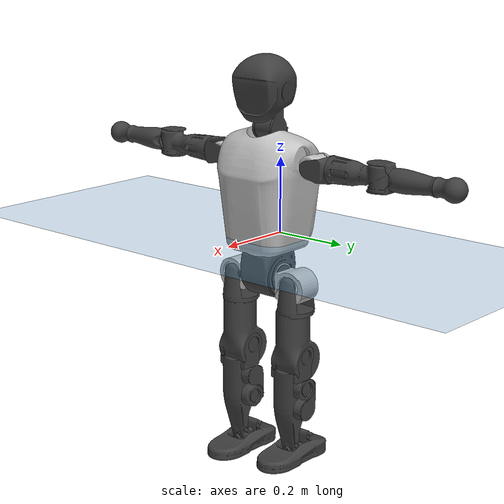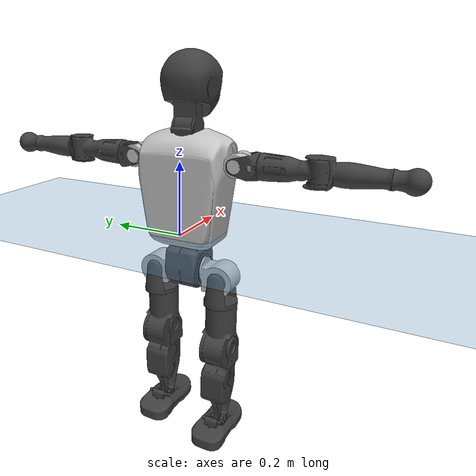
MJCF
<mujoco model="T1">
  <compiler angle="radian" assetdir="assets" balanceinertia="true" inertiafromgeom="false"/>

  <option timestep="0.005" density="1.2" viscosity="2e-05"/>

  <size nkey="1"/>

  <visual>
    <quality shadowsize="8192"/>
    <map shadowclip="0.5"/>
  </visual>

  <default>
    <default class="/">
      <joint armature="0.01" damping="0.01" frictionloss="0.1"/>
      <geom contype="0" conaffinity="0" group="1" solref="-1000 -80"/>
      <site size="0.01 0.005 0.005" group="5"/>
      <general forcelimited="true" biastype="affine" gainprm="25" biasprm="0 -25 -0.6"/>
      <default class="t1">
        <geom rgba="0.25 0.25 0.25 1"/>
        <default class="visual">
          <geom type="mesh" group="2"/>
        </default>
        <default class="collision">
          <geom group="3"/>
        </default>
        <default class="foot">
          <geom size="0.1115 0.05 0.015" type="box" condim="6" group="4" priority="1" solimp="0.015 1 0.015"/>
        </default>
        <default class="reward_collision_sphere">
          <geom group="5" rgba="1 0 0 1"/>
        </default>
      </default>
    </default>
  </default>

  <asset>
    <texture type="skybox" colorspace="auto" name="//unnamed_texture_0" builtin="gradient" rgb1="0.95 0.95 0.95" rgb2="0.95 0.95 0.95" width="100" height="600"/>
    <texture type="2d" colorspace="auto" name="texplane" builtin="checker" rgb1="0.345 0.575 0.748" rgb2="0.345 0.575 0.748" markrgb="1 1 1" width="512" height="512"/>
    <material name="MatPlane" class="/" texture="texplane" texuniform="true" texrepeat="2 2" specular="0.9"/>
    <mesh name="Trunk" class="/" file="Trunk.stl"/>
    <mesh name="H1" class="/" file="H1.stl"/>
    <mesh name="H2" class="/" file="H2.stl"/>
    <mesh name="AL1" class="/" file="AL1.stl"/>
    <mesh name="AL2" class="/" file="AL2.stl"/>
    <mesh name="AL3" class="/" file="AL3.stl"/>
    <mesh name="left_hand_link" class="/" file="left_hand_link.stl"/>
    <mesh name="AR1" class="/" file="AR1.stl"/>
    <mesh name="AR2" class="/" file="AR2.stl"/>
    <mesh name="AR3" class="/" file="AR3.stl"/>
    <mesh name="right_hand_link" class="/" file="right_hand_link.stl"/>
    <mesh name="Waist" class="/" file="Waist.stl"/>
    <mesh name="Hip_Pitch_Left" class="/" file="Hip_Pitch_Left.stl"/>
    <mesh name="Hip_Roll_Left" class="/" file="Hip_Roll_Left.stl"/>
    <mesh name="Hip_Yaw_Left" class="/" file="Hip_Yaw_Left.stl"/>
    <mesh name="Shank_Left" class="/" file="Shank_Left.stl"/>
    <mesh name="Ankle_Cross_Left" class="/" file="Ankle_Cross_Left.stl"/>
    <mesh name="left_foot_link" class="/" file="left_foot_link.stl"/>
    <mesh name="Hip_Pitch_Right" class="/" file="Hip_Pitch_Right.stl"/>
    <mesh name="Hip_Roll_Right" class="/" file="Hip_Roll_Right.stl"/>
    <mesh name="Hip_Yaw_Right" class="/" file="Hip_Yaw_Right.stl"/>
    <mesh name="Shank_Right" class="/" file="Shank_Right.stl"/>
    <mesh name="Ankle_Cross_Right" class="/" file="Ankle_Cross_Right.stl"/>
    <mesh name="right_foot_link" class="/" file="right_foot_link.stl"/>
  </asset>

  <worldbody>
    <geom name="floor" class="/" size="100 100 0.125" type="plane" group="0" material="MatPlane"/>
    <light name="toplight_shadow" class="/" pos="0 0 5" dir="0.0990148 0.0990148 -0.990148" type="directional" ambient="0.04 0.04 0.04" diffuse="0.55 0.55 0.55" specular="0.12 0.12 0.12"/>
    <light name="toplight_fill" class="/" pos="0 0 5" dir="0.0990148 0.0990148 -0.990148" type="directional" castshadow="false" ambient="0.04 0.04 0.04" diffuse="0.3 0.3 0.3" specular="0.08 0.08 0.08"/>
    <body name="trunk" childclass="t1" pos="-0.0025442 -0.00162683 0.00236833" quat="1 -0.000616794 1.80303e-05 0.000325928">
      <inertial pos="0.0394618 0.0010133 0.0990538" quat="0.999967 0.000872071 -0.00807651 -0.000976963" mass="7.36431" diaginertia="0.0173785 0.0549588 0.0367049"/>
      <joint name="//unnamed_joint_0" type="free" armature="0" damping="0" frictionloss="0"/>
      <geom name="//unnamed_geom_1" class="visual" rgba="0.76 0.76 0.76 1" mesh="Trunk"/>
      <geom name="//unnamed_geom_2" class="collision" size="0.0642933 0.0857244 0.128587" pos="0.0427773 0 0.11015" type="box"/>
      <geom name="//unnamed_geom_3" class="reward_collision_sphere" size="0.0985831" pos="0.0427773 0 0.0917921"/>
      <geom name="//unnamed_geom_4" class="reward_collision_sphere" size="0.0128587" pos="0.0427773 0.0799729 0"/>
      <geom name="//unnamed_geom_5" class="reward_collision_sphere" size="0.0128587" pos="0.0427773 -0.0799729 0"/>
      <geom name="//unnamed_geom_6" class="reward_collision_sphere" size="0.0128587" pos="0.0427773 0.100672 0.165226"/>
      <geom name="//unnamed_geom_7" class="reward_collision_sphere" size="0.0128587" pos="0.0427773 -0.100672 0.165226"/>
      <site name="imu" pos="0.01184 -0.00888468 0.00806007" size="0.00857244"/>
      <camera name="track" pos="0 -1.88171 0" quat="0.707107 0.707107 0 0" mode="trackcom"/>
      <camera name="ego_camera" pos="0.0869805 0 0.385527" quat="-0.5 -0.5 0.5 0.5"/>
      <body name="H1" pos="0.0455485 0.00127369 0.22032" quat="1 -0.000133356 -5.9241e-05 4.57696e-05">
        <inertial pos="-0.00300119 0.00089624 0.0550324" quat="0.7639 -0.0135836 0.00318624 0.645184" mass="0.26788" diaginertia="4.2838e-05 0.000164198 9.45933e-05"/>
        <joint name="AAHead_yaw" pos="0 0 0" axis="0.00439392 -0.000507889 0.99999" range="-1.62286 1.52826" armature="0.00759234" damping="0.00282469" frictionloss="0.0844027"/>
        <geom name="//unnamed_geom_8" class="visual" mesh="H1"/>
        <body name="H2" pos="0.000149799 -0.000129153 0.0592489" quat="1 -0.000128789 -6.91044e-05 -1.28674e-05">
          <inertial pos="0.00566118 0.00216046 0.0901614" quat="0.987838 0.108794 -0.0669662 -0.0886327" mass="0.391896" diaginertia="0.000354245 0.00143415 0.00111211"/>
          <joint name="Head_pitch" pos="0 0 0" axis="0.000172741 -1 -0.000784301" stiffness="6.9495e-05" range="-1.20234 0.336259" armature="0.00818404" damping="0.0138732" frictionloss="0.0786545"/>
          <geom name="//unnamed_geom_9" class="visual" mesh="H2"/>
          <geom name="//unnamed_geom_10" class="collision" size="0.0685796" pos="0.00712955 0 0.100971"/>
          <geom name="//unnamed_geom_11" class="reward_collision_sphere" size="0.077152" pos="0.0142591 0 0.0917921"/>
        </body>
      </body>
      <body name="AL1" pos="0.0421745 0.10252 0.199324" quat="1 1.41697e-05 0.000383571 5.76839e-05">
        <inertial pos="-0.00368091 0.0416433 0.000690418" quat="0.504534 0.496022 -0.504019 0.495351" mass="0.334931" diaginertia="0.000252696 0.000998307 0.000197138"/>
        <joint name="Left_Shoulder_Pitch" pos="0 0 0" axis="0.00258259 0.999875 -0.0156236" stiffness="0.00639723" range="-3.30728 1.27376" armature="0.00905282" damping="0.00914673" frictionloss="0.084525"/>
        <geom name="//unnamed_geom_12" class="visual" rgba="0.76 0.76 0.76 1" mesh="AL1"/>
        <body name="AL2" pos="-4.55145e-05 0.0445243 -0.00274899" quat="1 4.2566e-05 -0.000340359 1.74126e-05">
          <inertial pos="0.00112691 0.0327412 0.000379192" quat="0.48817 0.510874 -0.489688 0.510786" mass="0.0972542" diaginertia="7.21865e-05 0.000252044 0.000112277"/>
          <joint name="Left_Shoulder_Roll" pos="0 0 0" axis="-1 0.000137011 -0.000409683" range="-1.62895 1.79562" armature="0.00873273" damping="0.0120296" frictionloss="0.08736"/>
          <geom name="//unnamed_geom_13" class="visual" mesh="AL2"/>
          <body name="AL3" pos="0.00234726 0.0562956 0.00319073" quat="0.999999 0.000791506 0.000280268 -0.000849213">
            <inertial pos="-0.00076799 0.0792681 -0.000666207" quat="0.707041 0.707171 -2.36791e-05 -0.00169477" mass="0.662449" diaginertia="0.00245417 0.00931392 0.000400138"/>
            <joint name="Left_Elbow_Pitch" pos="0 0 0" axis="0.00256586 -0.999992 0.00301244" range="-2.26804 2.26988" armature="0.00752491" damping="0.0176822" frictionloss="0.0830592"/>
            <geom name="//unnamed_geom_14" class="visual" mesh="AL3"/>
            <geom name="//unnamed_geom_15" class="collision" size="0.0257173 0.0642933" pos="0 0.0470429 0" quat="0.707105 0.707108 0 0" type="cylinder"/>
            <geom name="//unnamed_geom_16" class="reward_collision_sphere" size="0.0308608"/>
            <body name="left_hand_link" pos="-0.00224484 0.139271 0.000508413" quat="1 -0.000162806 -0.000563664 9.29863e-05">
              <inertial pos="0.000718219 0.100664 0.00313639" quat="0.708282 0.705787 -0.0141459 -0.00116691" mass="0.198843" diaginertia="0.00151786 0.00597683 0.00013561"/>
              <joint name="Left_Elbow_Yaw" pos="0 0 0" axis="-0.00318299 0.00199186 0.999993" stiffness="0.00774333" range="-2.44813 -0.0480082" armature="0.0088059" damping="0.0119268" frictionloss="0.0869144"/>
              <geom name="//unnamed_geom_17" class="visual" mesh="left_hand_link"/>
              <geom name="//unnamed_geom_18" class="collision" size="0.0257173 0.0750089" pos="0 0.122311 0" quat="0.707105 0.707108 0 0" type="cylinder"/>
              <geom name="//unnamed_geom_19" class="reward_collision_sphere" size="0.0428622"/>
              <geom name="//unnamed_geom_20" class="reward_collision_sphere" size="0.0300036" pos="0 0.103494 0"/>
              <geom name="//unnamed_geom_21" class="reward_collision_sphere" size="0.0300036" pos="0 0.202284 0"/>
            </body>
          </body>
        </body>
      </body>
      <body name="AR1" pos="0.0434079 -0.0998851 0.198479" quat="1 -0.000361202 1.06681e-05 0.000164921">
        <inertial pos="-0.00217826 -0.044087 0.000514356" quat="0.503905 0.495677 -0.504737 0.495605" mass="0.321882" diaginertia="0.000244479 0.000911361 0.000184413"/>
        <joint name="Right_Shoulder_Pitch" pos="0 0 0" axis="-0.000610027 -0.999994 0.00333625" stiffness="0.00665362" range="-1.1822 3.33056" armature="0.00956956" damping="0.00774949" frictionloss="0.0950649"/>
        <geom name="//unnamed_geom_22" class="visual" rgba="0.76 0.76 0.76 1" mesh="AR1"/>
        <body name="AR2" pos="-0.000919204 -0.0462551 -0.00103275" quat="0.999999 -0.000765599 -0.000330076 0.000995976">
          <inertial pos="-0.000130861 -0.0362479 -0.00238906" quat="0.510055 0.479718 -0.522893 0.486105" mass="0.101161" diaginertia="7.36675e-05 0.0002566 0.000115008"/>
          <joint name="Right_Shoulder_Roll" pos="0 0 0" axis="-0.999788 -0.0176339 0.0106357" range="-1.74857 1.59239" armature="0.00819192" damping="0.00742361" frictionloss="0.085667"/>
          <geom name="//unnamed_geom_23" class="visual" mesh="AR2"/>
          <body name="AR3" pos="-2.43759e-05 -0.0586667 0.000951792" quat="1 -0.000254167 0.000765304 -0.000542017">
            <inertial pos="-0.000322507 -0.0813705 0.00151899" quat="0.708044 0.706169 5.71955e-07 -0.000112259" mass="0.620997" diaginertia="0.00226977 0.0091132 0.000379837"/>
            <joint name="Right_Elbow_Pitch" pos="0 0 0" axis="0.000271372 1 -0.000193074" range="-2.28915 2.27785" armature="0.00864588" damping="0.0142448" frictionloss="0.0844614"/>
            <geom name="//unnamed_geom_24" class="visual" mesh="AR3"/>
            <geom name="//unnamed_geom_25" class="collision" size="0.0257173 0.0642933" pos="0 -0.0470429 0" quat="0.707105 0.707108 0 0" type="cylinder"/>
            <geom name="//unnamed_geom_26" class="reward_collision_sphere" size="0.0308608"/>
            <body name="right_hand_link" pos="-0.00317963 -0.138118 0.000385082" quat="1 6.53077e-06 9.23511e-05 -0.000104091">
              <inertial pos="-0.000275888 -0.100994 0.000186157" quat="0.704064 0.710131 0.00278638 -0.000119316" mass="0.201792" diaginertia="0.00151097 0.00604063 0.000136013"/>
              <joint name="Right_Elbow_Yaw" pos="0 0 0" axis="2.48926e-05 0.000150973 1" stiffness="0.00314402" range="-0.0390621 2.43822" armature="0.00732354" damping="0.0108464" frictionloss="0.0978434"/>
              <geom name="//unnamed_geom_27" class="visual" mesh="right_hand_link"/>
              <geom name="//unnamed_geom_28" class="collision" size="0.0257173 0.0750089" pos="0 -0.122311 0" quat="0.707105 0.707108 0 0" type="cylinder"/>
              <geom name="//unnamed_geom_29" class="reward_collision_sphere" size="0.0428622"/>
              <geom name="//unnamed_geom_30" class="reward_collision_sphere" size="0.0300036" pos="0 -0.103494 0"/>
              <geom name="//unnamed_geom_31" class="reward_collision_sphere" size="0.0300036" pos="0 -0.202284 0"/>
            </body>
          </body>
        </body>
      </body>
      <body name="Waist" pos="0.0451516 -0.0040264 -0.103423" quat="1 0.000341121 9.85802e-05 -0.000292644">
        <inertial pos="0.000600884 0.00195341 0.00420189" quat="0.983185 0.00110053 -0.182595 0.00241751" mass="1.56391" diaginertia="0.000962843 0.00372158 0.00296717"/>
        <joint name="Waist" pos="0 0 0" axis="-0.0132716 0.0014051 0.999911" stiffness="0.00926151" range="-1.57462 1.59729" armature="0.00853331" damping="0.0111174" frictionloss="0.0858319"/>
        <geom name="//unnamed_geom_32" class="visual" mesh="Waist"/>
        <body name="Hip_Pitch_Left" pos="-0.000565131 0.0970709 0.000609655" quat="1 -0.000159014 0.000923322 3.10733e-05">
          <inertial pos="0.00159111 -0.00837594 -0.0162499" quat="0.97651 0.214968 0.014699 -0.000901459" mass="0.659417" diaginertia="0.000338789 0.00114392 0.00082582"/>
          <joint name="Left_Hip_Pitch" pos="0 0 0" axis="-0.00862588 0.99996 -0.00216772" stiffness="0.00818355" range="-1.75102 1.55355" armature="0.00979265" damping="0.0125315" frictionloss="0.0813628"/>
          <geom name="//unnamed_geom_33" class="visual" rgba="0.76 0.76 0.76 1" mesh="Hip_Pitch_Left"/>
          <body name="Hip_Roll_Left" pos="0.00126198 -0.0033094 -0.0154196" quat="1 0.000233485 0.000159631 -3.3668e-05">
            <inertial pos="0.00170831 -0.000153013 -0.0521142" quat="0.706528 -0.00590502 -0.00642456 0.707631" mass="0.234096" diaginertia="0.000305749 0.00107845 0.000324692"/>
            <joint name="Left_Hip_Roll" pos="0 0 0" axis="-0.999917 -0.0069119 0.0108468" range="-1.58402 0.257427" armature="0.00909443" damping="0.0124049" frictionloss="0.0953449"/>
            <geom name="//unnamed_geom_34" class="visual" mesh="Hip_Roll_Left"/>
            <geom name="//unnamed_geom_35" class="reward_collision_sphere" size="0.0471484"/>
            <body name="Hip_Yaw_Left" pos="0.00513028 -0.00349766 -0.0719963" quat="0.999999 0.00132698 0.000314122 0.000253942">
              <inertial pos="-0.00422977 0.000928256 -0.0844839" quat="0.691975 -0.0340245 -0.0231319 0.720748" mass="1.37183" diaginertia="0.00459952 0.0186708 0.00167747"/>
              <joint name="Left_Hip_Yaw" pos="0 0 0" axis="-0.000339117 0.000807608 -1" range="-1.00727 1.00771" armature="0.00838629" damping="0.0142658" frictionloss="0.0867885"/>
              <geom name="//unnamed_geom_36" class="visual" mesh="Hip_Yaw_Left"/>
              <geom name="//unnamed_geom_37" class="collision" size="0.0428622 0.0685796" type="cylinder"/>
              <body name="Shank_Left" pos="-0.0050125 -0.00141675 -0.118072" quat="1 -2.00657e-05 2.3541e-05 1.89021e-06">
                <inertial pos="-0.00644265 -0.000493428 -0.11464" quat="0.998057 0.0111463 -0.0260893 0.0554785" mass="1.11214" diaginertia="0.00668644 0.0257061 0.00119458"/>
                <joint name="Left_Knee_Pitch" pos="0 0 0" axis="-0.00381993 0.99995 -0.00929155" range="0.00377185 2.28569" armature="0.00980961" damping="0" frictionloss="0.0901635"/>
                <geom name="//unnamed_geom_38" class="visual" mesh="Shank_Left"/>
                <geom name="//unnamed_geom_39" class="collision" size="0.0428622 0.0642933" pos="0 0 -0.11015" type="cylinder"/>
                <geom name="//unnamed_geom_40" class="reward_collision_sphere" size="0.0557209"/>
                <body name="Ankle_Cross_Left" pos="0.00131431 -0.00122641 -0.258582" quat="0.999999 0.0012014 -0.000689383 8.77758e-05">
                  <inertial pos="-0.00226655 0.000843213 -0.00455683" quat="0.441869 0.55316 0.547734 0.445817" mass="0.0459138" diaginertia="5.15996e-06 1.89843e-05 7.63594e-06"/>
                  <joint name="Left_Ankle_Pitch" pos="0 0 0" axis="-0.000744825 0.999999 0.000836486" range="-0.864031 0.34412" armature="0.00861226" damping="0.0160605" frictionloss="0.081395"/>
                  <geom name="//unnamed_geom_41" class="visual" mesh="Ankle_Cross_Left"/>
                  <body name="left_foot_link" pos="-0.00285233 -0.00279871 -0.0090797" quat="1 0.000137154 -0.000111699 -3.50492e-05">
                    <inertial pos="-0.00247157 -0.00258283 -0.00843836" quat="-0.00316462 0.624382 0.00128836 0.781112" mass="0.428053" diaginertia="0.000481238 0.00173279 0.00146568"/>
                    <joint name="Left_Ankle_Roll" pos="0 0 0" axis="-1 0.000137855 -0.000494743" range="-0.403881 0.493777" armature="0.00866373" damping="0" frictionloss="0.0801413"/>
                    <geom name="//unnamed_geom_42" class="visual" mesh="left_foot_link"/>
                    <geom name="left_foot" class="foot" size="0.107184 0.041134 0.0130162" pos="0.00712955 0 -0.0137688"/>
                    <geom name="//unnamed_geom_44" class="reward_collision_sphere" size="0.0445767" pos="0.00712955 0 -0.0137688"/>
                    <geom name="//unnamed_geom_45" class="reward_collision_sphere" size="0.0257173" pos="0.0677307 -0.0216397 -0.0137688"/>
                    <geom name="//unnamed_geom_46" class="reward_collision_sphere" size="0.0257173" pos="-0.0499069 -0.0216397 -0.0137688"/>
                    <site name="left_foot" class="foot" pos="0.00712955 0 -0.0137688" size="0.00857244"/>
                  </body>
                </body>
              </body>
            </body>
          </body>
        </body>
        <body name="Hip_Pitch_Right" pos="-0.00385904 -0.102632 0.00152159" quat="1 -0.000546807 -2.46218e-05 6.94913e-05">
          <inertial pos="-0.000394626 0.00568806 -0.0183808" quat="0.974987 -0.22169 0.0128508 -0.00941932" mass="0.644528" diaginertia="0.000343196 0.00111698 0.000824244"/>
          <joint name="Right_Hip_Pitch" pos="0 0 0" axis="-0.00354942 -0.999992 0.00209047" range="-1.59745 1.74327" armature="0.00748341" damping="0.00479283" frictionloss="0.0968318"/>
          <geom name="//unnamed_geom_47" class="visual" rgba="0.76 0.76 0.76 1" mesh="Hip_Pitch_Right"/>
          <body name="Hip_Roll_Right" pos="-0.00302128 -0.00170819 -0.0170274" quat="0.999999 -6.45019e-05 -0.000178666 -0.00143537">
            <inertial pos="-0.00154869 0.00191226 -0.0466674" quat="0.703916 -3.80161e-05 -0.00204529 0.71028" mass="0.250306" diaginertia="0.000323278 0.00109095 0.000339374"/>
            <joint name="Right_Hip_Roll" pos="0 0 0" axis="-0.999999 0.00137113 1.51814e-05" stiffness="0.00418227" range="-0.206583 1.5565" armature="0.008919" damping="0.0161692" frictionloss="0.096728"/>
            <geom name="//unnamed_geom_48" class="visual" mesh="Hip_Roll_Right"/>
            <geom name="//unnamed_geom_49" class="reward_collision_sphere" size="0.0471484"/>
            <body name="Hip_Yaw_Right" pos="0.000416626 -0.00192267 -0.0796881" quat="1 8.20394e-05 -0.000223857 0.000352333">
              <inertial pos="-0.00464959 -0.00163515 -0.0792631" quat="0.71602 -0.0342406 -0.0362031 0.696299" mass="1.39565" diaginertia="0.00480167 0.0184496 0.00170322"/>
              <joint name="Right_Hip_Yaw" pos="0 0 0" axis="0.00519899 -0.00414271 -0.999978" range="-0.988848 1.01351" armature="0.00868475" damping="0.00784403" frictionloss="0.0759642"/>
              <geom name="//unnamed_geom_50" class="visual" mesh="Hip_Yaw_Right"/>
              <geom name="//unnamed_geom_51" class="collision" size="0.0428622 0.0685796" type="cylinder"/>
              <body name="Shank_Right" pos="-0.0110565 -0.00258889 -0.125002" quat="0.999999 0.000773424 0.00078397 -0.000360731">
                <inertial pos="-0.00473353 -0.00202175 -0.113011" quat="0.999242 -0.0113115 -0.0262097 -0.0264794" mass="1.16495" diaginertia="0.00636209 0.0261476 0.00127576"/>
                <joint name="Right_Knee_Pitch" pos="0 0 0" axis="0.00186218 -0.999994 0.00298551" range="-2.36296 -0.0131719" armature="0.00790977" damping="0.00879726" frictionloss="0.0857463"/>
                <geom name="//unnamed_geom_52" class="visual" mesh="Shank_Right"/>
                <geom name="//unnamed_geom_53" class="collision" size="0.0428622 0.0642933" pos="0 0 -0.11015" type="cylinder"/>
                <geom name="//unnamed_geom_54" class="reward_collision_sphere" size="0.0557209"/>
                <body name="Ankle_Cross_Right" pos="-0.000677156 0.000757295 -0.261095" quat="1 -1.06682e-05 0.000161193 8.31648e-05">
                  <inertial pos="-0.00100171 0.00322337 -0.00715641" quat="0.443429 0.550735 0.551187 0.443006" mass="0.043833" diaginertia="5.35493e-06 1.80444e-05 7.40968e-06"/>
                  <joint name="Right_Ankle_Pitch" pos="0 0 0" axis="0.00271 -0.999975 -0.00654318" range="-0.295581 0.823104" armature="0.00860042" damping="0.0213004" frictionloss="0.0871707"/>
                  <geom name="//unnamed_geom_55" class="visual" mesh="Ankle_Cross_Right"/>
                  <body name="right_foot_link" pos="0.00192086 0.000975519 -0.0173058" quat="1 -2.24341e-06 -9.24184e-06 -2.02497e-05">
                    <inertial pos="-9.48281e-05 0.00169748 -0.00837453" quat="0.00266855 0.623721 0.00700371 0.781612" mass="0.418774" diaginertia="0.000496921 0.00177516 0.00142452"/>
                    <joint name="Right_Ankle_Roll" pos="0 0 0" axis="-0.999957 -0.00809253 -0.00461807" range="-0.479912 0.455975" armature="0.00890429" damping="0.0108803" frictionloss="0.0963905"/>
                    <geom name="//unnamed_geom_56" class="visual" mesh="right_foot_link"/>
                    <geom name="right_foot" class="foot" size="0.0996332 0.0396589 0.0135791" pos="0.00712955 0 -0.0137688"/>
                    <geom name="//unnamed_geom_58" class="reward_collision_sphere" size="0.0342898"/>
                    <geom name="//unnamed_geom_59" class="reward_collision_sphere" size="0.0257173" pos="0.00712955 0 -0.0137688"/>
                    <geom name="//unnamed_geom_60" class="reward_collision_sphere" size="0.0257173" pos="0.0677307 0.0216397 -0.0137688"/>
                    <geom name="//unnamed_geom_61" class="reward_collision_sphere" size="0.0257173" pos="-0.0499069 0.0216397 -0.0137688"/>
                    <site name="right_foot" class="foot" pos="0.00712955 0 -0.0137688" size="0.00857244"/>
                  </body>
                </body>
              </body>
            </body>
          </body>
        </body>
      </body>
    </body>
  </worldbody>

  <contact>
    <pair class="/" geom1="floor" geom2="left_foot" name="//unnamed_contact_0"/>
    <pair class="/" geom1="floor" geom2="right_foot" name="//unnamed_contact_1"/>
  </contact>

  <actuator>
    <general name="AAHead_yaw" class="/" joint="AAHead_yaw" forcerange="-5.94304 5.94304" gainprm="19.8726" biasprm="0 -19.8726 -0.543169"/>
    <general name="Head_pitch" class="/" joint="Head_pitch" forcerange="-5.80252 5.80252" gainprm="19.8726" biasprm="0 -19.8726 -0.543169"/>
    <general name="Left_Shoulder_Pitch" class="/" joint="Left_Shoulder_Pitch" forcerange="-15.5431 15.5431" gainprm="19.8726" biasprm="0 -19.8726 -0.543169"/>
    <general name="Left_Shoulder_Roll" class="/" joint="Left_Shoulder_Roll" forcerange="-14.556 14.556" gainprm="19.8726" biasprm="0 -19.8726 -0.543169"/>
    <general name="Left_Elbow_Pitch" class="/" joint="Left_Elbow_Pitch" forcerange="-17.019 17.019" gainprm="19.8726" biasprm="0 -19.8726 -0.543169"/>
    <general name="Left_Elbow_Yaw" class="/" joint="Left_Elbow_Yaw" forcerange="-15.6599 15.6599" gainprm="19.8726" biasprm="0 -19.8726 -0.543169"/>
    <general name="Right_Shoulder_Pitch" class="/" joint="Right_Shoulder_Pitch" forcerange="-15.0709 15.0709" gainprm="19.8726" biasprm="0 -19.8726 -0.543169"/>
    <general name="Right_Shoulder_Roll" class="/" joint="Right_Shoulder_Roll" forcerange="-16.858 16.858" gainprm="19.8726" biasprm="0 -19.8726 -0.543169"/>
    <general name="Right_Elbow_Pitch" class="/" joint="Right_Elbow_Pitch" forcerange="-15.8815 15.8815" gainprm="19.8726" biasprm="0 -19.8726 -0.543169"/>
    <general name="Right_Elbow_Yaw" class="/" joint="Right_Elbow_Yaw" forcerange="-14.3544 14.3544" gainprm="19.8726" biasprm="0 -19.8726 -0.543169"/>
    <general name="Waist" class="/" joint="Waist" forcerange="-23.958 23.958" gainprm="19.8726" biasprm="0 -19.8726 -0.543169"/>
    <general name="Left_Hip_Pitch" class="/" joint="Left_Hip_Pitch" forcerange="-38.05 38.05" gainprm="19.8726" biasprm="0 -19.8726 -0.543169"/>
    <general name="Left_Hip_Roll" class="/" joint="Left_Hip_Roll" forcerange="-28.1235 28.1235" gainprm="19.8726" biasprm="0 -19.8726 -0.543169"/>
    <general name="Left_Hip_Yaw" class="/" joint="Left_Hip_Yaw" forcerange="-23.0284 23.0284" gainprm="19.8726" biasprm="0 -19.8726 -0.543169"/>
    <general name="Left_Knee_Pitch" class="/" joint="Left_Knee_Pitch" forcerange="-52.1863 52.1863" gainprm="19.8726" biasprm="0 -19.8726 -0.543169"/>
    <general name="Left_Ankle_Pitch" class="/" joint="Left_Ankle_Pitch" forcerange="-17.2719 17.2719" gainprm="19.8726" biasprm="0 -19.8726 -0.543169"/>
    <general name="Left_Ankle_Roll" class="/" joint="Left_Ankle_Roll" forcerange="-13.9045 13.9045" gainprm="19.8726" biasprm="0 -19.8726 -0.543169"/>
    <general name="Right_Hip_Pitch" class="/" joint="Right_Hip_Pitch" forcerange="-40.5776 40.5776" gainprm="19.8726" biasprm="0 -19.8726 -0.543169"/>
    <general name="Right_Hip_Roll" class="/" joint="Right_Hip_Roll" forcerange="-25.7162 25.7162" gainprm="19.8726" biasprm="0 -19.8726 -0.543169"/>
    <general name="Right_Hip_Yaw" class="/" joint="Right_Hip_Yaw" forcerange="-25.6819 25.6819" gainprm="19.8726" biasprm="0 -19.8726 -0.543169"/>
    <general name="Right_Knee_Pitch" class="/" joint="Right_Knee_Pitch" forcerange="-56.7135 56.7135" gainprm="19.8726" biasprm="0 -19.8726 -0.543169"/>
    <general name="Right_Ankle_Pitch" class="/" joint="Right_Ankle_Pitch" forcerange="-17.0253 17.0253" gainprm="19.8726" biasprm="0 -19.8726 -0.543169"/>
    <general name="Right_Ankle_Roll" class="/" joint="Right_Ankle_Roll" forcerange="-13.8536 13.8536" gainprm="19.8726" biasprm="0 -19.8726 -0.543169"/>
  </actuator>

  <sensor>
    <gyro site="imu" name="imu_angular_velocity"/>
    <velocimeter site="imu" name="imu_linear_velocity"/>
    <framelinvel objtype="site" objname="left_foot" name="left_foot_global_linear_velocity"/>
    <framelinvel objtype="site" objname="right_foot" name="right_foot_global_linear_velocity"/>
  </sensor>

  <keyframe>
    <key name="home" qpos="0 0 0.6385 1 0 0 0 0 0 0 1.4 0 -0.4 0 -1.4 0 0.4 0 -0.4 0 0 0.8 -0.4 0 0.4 0 0 -0.8 0.4 0"/>
  </keyframe>
</mujoco>
